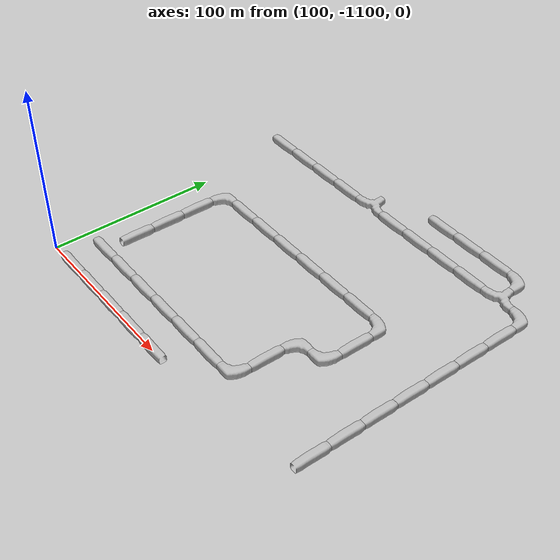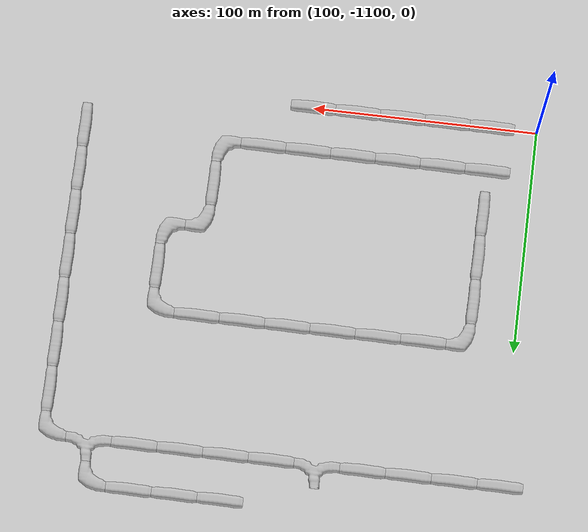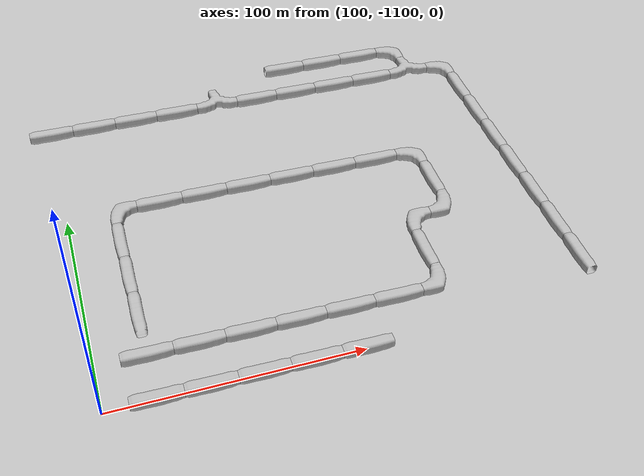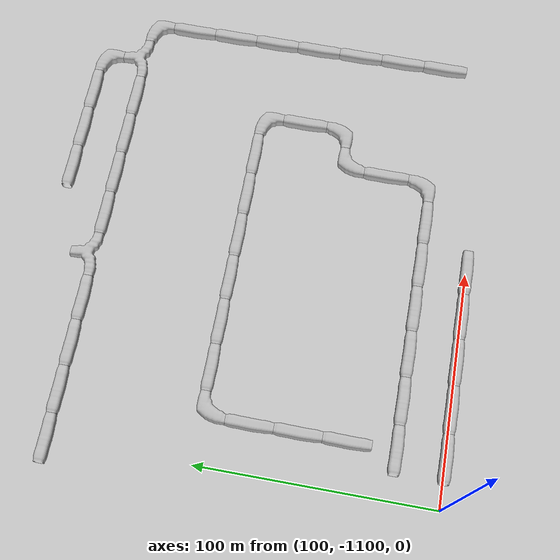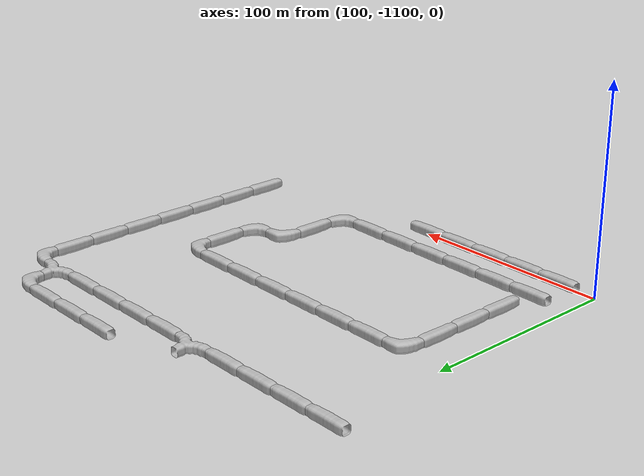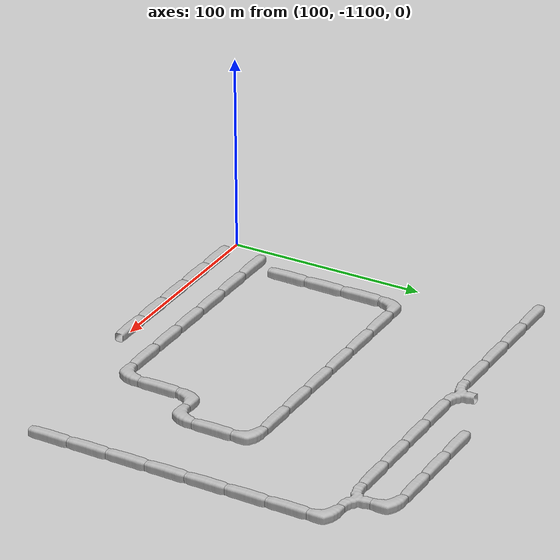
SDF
<sdf version="1.6">
 <world name="cave_16000_0">
  <include>
   <static>true</static>
   <name>cave_5_-47</name>
   <pose>100 -940 0 0 0 1.5707963267948966</pose>
   <uri>model://cave_straight_20m</uri>
  </include>
  <include>
   <static>true</static>
   <name>cave_6_-47</name>
   <pose>120 -940 0 0 0 1.5707963267948966</pose>
   <uri>model://cave_straight_20m</uri>
  </include>
  <include>
   <static>true</static>
   <name>cave_7_-47</name>
   <pose>140 -940 0 0 0 1.5707963267948966</pose>
   <uri>model://cave_straight_20m</uri>
  </include>
  <include>
   <static>true</static>
   <name>cave_8_-47</name>
   <pose>160 -940 0 0 0 1.5707963267948966</pose>
   <uri>model://cave_straight_20m</uri>
  </include>
  <include>
   <static>true</static>
   <name>cave_9_-47</name>
   <pose>180 -940 0 0 0 0.0</pose>
   <uri>model://cave_3way_20m</uri>
  </include>
  <include>
   <static>true</static>
   <name>cave_10_-47</name>
   <pose>200 -940 0 0 0 1.5707963267948966</pose>
   <uri>model://cave_straight_20m</uri>
  </include>
  <include>
   <static>true</static>
   <name>cave_11_-47</name>
   <pose>220 -940 0 0 0 1.5707963267948966</pose>
   <uri>model://cave_straight_20m</uri>
  </include>
  <include>
   <static>true</static>
   <name>cave_12_-47</name>
   <pose>240 -940 0 0 0 1.5707963267948966</pose>
   <uri>model://cave_straight_20m</uri>
  </include>
  <include>
   <static>true</static>
   <name>cave_13_-47</name>
   <pose>260 -940 0 0 0 1.5707963267948966</pose>
   <uri>model://cave_straight_20m</uri>
  </include>
  <include>
   <static>true</static>
   <name>cave_14_-47</name>
   <pose>280 -940 0 0 0 0.0</pose>
   <uri>model://cave_3way_20m</uri>
  </include>
  <include>
   <static>true</static>
   <name>cave_15_-47</name>
   <pose>300 -940 0 0 0 3.141592653589793</pose>
   <uri>model://cave_L_20m</uri>
  </include>
  <include>
   <static>true</static>
   <name>cave_15_-48</name>
   <pose>300 -960 0 0 0 0.0</pose>
   <uri>model://cave_straight_20m</uri>
  </include>
  <include>
   <static>true</static>
   <name>cave_15_-49</name>
   <pose>300 -980 0 0 0 0.0</pose>
   <uri>model://cave_straight_20m</uri>
  </include>
  <include>
   <static>true</static>
   <name>cave_15_-50</name>
   <pose>300 -1000 0 0 0 0.0</pose>
   <uri>model://cave_straight_20m</uri>
  </include>
  <include>
   <static>true</static>
   <name>cave_15_-51</name>
   <pose>300 -1020 0 0 0 0.0</pose>
   <uri>model://cave_straight_20m</uri>
  </include>
  <include>
   <static>true</static>
   <name>cave_15_-52</name>
   <pose>300 -1040 0 0 0 0.0</pose>
   <uri>model://cave_straight_20m</uri>
  </include>
  <include>
   <static>true</static>
   <name>cave_15_-53</name>
   <pose>300 -1060 0 0 0 0.0</pose>
   <uri>model://cave_straight_20m</uri>
  </include>
  <include>
   <static>true</static>
   <name>cave_15_-54</name>
   <pose>300 -1080 0 0 0 0.0</pose>
   <uri>model://cave_straight_20m</uri>
  </include>
  <include>
   <static>true</static>
   <name>cave_10_-55</name>
   <pose>200 -1100 0 0 0 1.5707963267948966</pose>
   <uri>model://cave_straight_20m</uri>
  </include>
  <include>
   <static>true</static>
   <name>cave_9_-55</name>
   <pose>180 -1100 0 0 0 1.5707963267948966</pose>
   <uri>model://cave_straight_20m</uri>
  </include>
  <include>
   <static>true</static>
   <name>cave_8_-55</name>
   <pose>160 -1100 0 0 0 1.5707963267948966</pose>
   <uri>model://cave_straight_20m</uri>
  </include>
  <include>
   <static>true</static>
   <name>cave_7_-55</name>
   <pose>140 -1100 0 0 0 1.5707963267948966</pose>
   <uri>model://cave_straight_20m</uri>
  </include>
  <include>
   <static>true</static>
   <name>cave_6_-55</name>
   <pose>120 -1100 0 0 0 1.5707963267948966</pose>
   <uri>model://cave_straight_20m</uri>
  </include>
  <include>
   <static>true</static>
   <name>cave_14_-46</name>
   <pose>280 -920 0 0 0 3.141592653589793</pose>
   <uri>model://cave_L_20m</uri>
  </include>
  <include>
   <static>true</static>
   <name>cave_13_-46</name>
   <pose>260 -920 0 0 0 1.5707963267948966</pose>
   <uri>model://cave_straight_20m</uri>
  </include>
  <include>
   <static>true</static>
   <name>cave_12_-46</name>
   <pose>240 -920 0 0 0 1.5707963267948966</pose>
   <uri>model://cave_straight_20m</uri>
  </include>
  <include>
   <static>true</static>
   <name>cave_11_-46</name>
   <pose>220 -920 0 0 0 1.5707963267948966</pose>
   <uri>model://cave_straight_20m</uri>
  </include>
  <include>
   <static>true</static>
   <name>cave_6_-54</name>
   <pose>120 -1080 0 0 0 1.5707963267948966</pose>
   <uri>model://cave_straight_20m</uri>
  </include>
  <include>
   <static>true</static>
   <name>cave_7_-54</name>
   <pose>140 -1080 0 0 0 1.5707963267948966</pose>
   <uri>model://cave_straight_20m</uri>
  </include>
  <include>
   <static>true</static>
   <name>cave_8_-54</name>
   <pose>160 -1080 0 0 0 1.5707963267948966</pose>
   <uri>model://cave_straight_20m</uri>
  </include>
  <include>
   <static>true</static>
   <name>cave_9_-54</name>
   <pose>180 -1080 0 0 0 1.5707963267948966</pose>
   <uri>model://cave_straight_20m</uri>
  </include>
  <include>
   <static>true</static>
   <name>cave_10_-54</name>
   <pose>200 -1080 0 0 0 1.5707963267948966</pose>
   <uri>model://cave_straight_20m</uri>
  </include>
  <include>
   <static>true</static>
   <name>cave_11_-54</name>
   <pose>220 -1080 0 0 0 1.5707963267948966</pose>
   <uri>model://cave_straight_20m</uri>
  </include>
  <include>
   <static>true</static>
   <name>cave_12_-54</name>
   <pose>240 -1080 0 0 0 1.5707963267948966</pose>
   <uri>model://cave_L_20m</uri>
  </include>
  <include>
   <static>true</static>
   <name>cave_12_-53</name>
   <pose>240 -1060 0 0 0 0.0</pose>
   <uri>model://cave_straight_20m</uri>
  </include>
  <include>
   <static>true</static>
   <name>cave_12_-52</name>
   <pose>240 -1040 0 0 0 -1.5707963267948966</pose>
   <uri>model://cave_L_20m</uri>
  </include>
  <include>
   <static>true</static>
   <name>cave_13_-52</name>
   <pose>260 -1040 0 0 0 1.5707963267948966</pose>
   <uri>model://cave_L_20m</uri>
  </include>
  <include>
   <static>true</static>
   <name>cave_13_-51</name>
   <pose>260 -1020 0 0 0 0.0</pose>
   <uri>model://cave_straight_20m</uri>
  </include>
  <include>
   <static>true</static>
   <name>cave_13_-50</name>
   <pose>260 -1000 0 0 0 3.141592653589793</pose>
   <uri>model://cave_L_20m</uri>
  </include>
  <include>
   <static>true</static>
   <name>cave_12_-50</name>
   <pose>240 -1000 0 0 0 1.5707963267948966</pose>
   <uri>model://cave_straight_20m</uri>
  </include>
  <include>
   <static>true</static>
   <name>cave_11_-50</name>
   <pose>220 -1000 0 0 0 1.5707963267948966</pose>
   <uri>model://cave_straight_20m</uri>
  </include>
  <include>
   <static>true</static>
   <name>cave_10_-50</name>
   <pose>200 -1000 0 0 0 1.5707963267948966</pose>
   <uri>model://cave_straight_20m</uri>
  </include>
  <include>
   <static>true</static>
   <name>cave_9_-50</name>
   <pose>180 -1000 0 0 0 1.5707963267948966</pose>
   <uri>model://cave_straight_20m</uri>
  </include>
  <include>
   <static>true</static>
   <name>cave_8_-50</name>
   <pose>160 -1000 0 0 0 1.5707963267948966</pose>
   <uri>model://cave_straight_20m</uri>
  </include>
  <include>
   <static>true</static>
   <name>cave_7_-50</name>
   <pose>140 -1000 0 0 0 1.5707963267948966</pose>
   <uri>model://cave_straight_20m</uri>
  </include>
  <include>
   <static>true</static>
   <name>cave_6_-50</name>
   <pose>120 -1000 0 0 0 -1.5707963267948966</pose>
   <uri>model://cave_L_20m</uri>
  </include>
  <include>
   <static>true</static>
   <name>cave_6_-51</name>
   <pose>120 -1020 0 0 0 0.0</pose>
   <uri>model://cave_straight_20m</uri>
  </include>
  <include>
   <static>true</static>
   <name>cave_6_-52</name>
   <pose>120 -1040 0 0 0 0.0</pose>
   <uri>model://cave_straight_20m</uri>
  </include>
  <include>
   <static>true</static>
   <name>cave_6_-53</name>
   <pose>120 -1060 0 0 0 0.0</pose>
   <uri>model://cave_straight_20m</uri>
  </include>
 </world>
</sdf>
